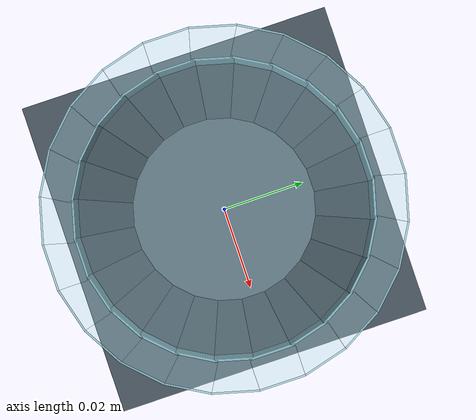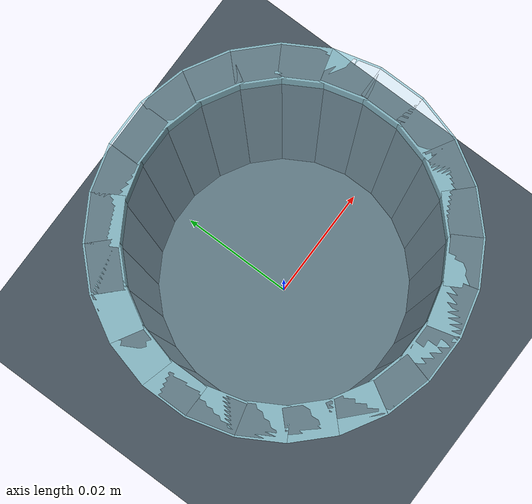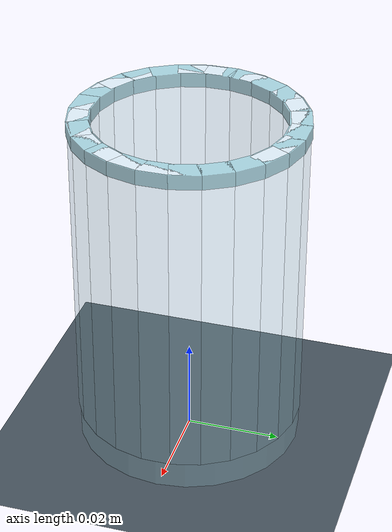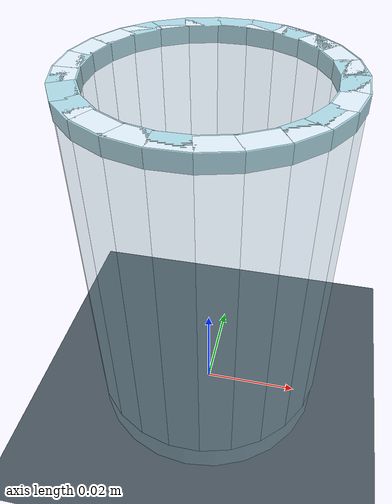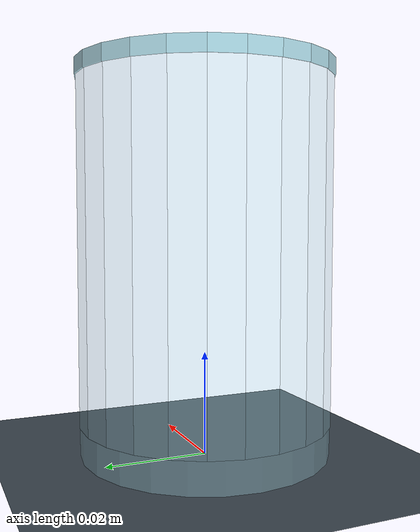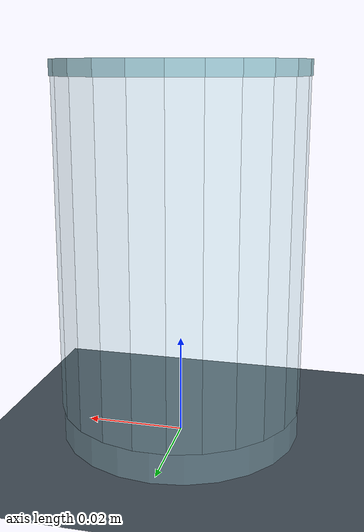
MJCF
<mujoco model="duet2_glass">
  <compiler angle="radian" autolimits="true" />
  <option timestep=".005" integrator="implicitfast" cone="elliptic" iterations="30" />
  <asset>
    <material name="base_motor_holder_so101_v1_material" rgba="1 0.82 0.12 1" />
    <material name="base_so101_v2_material" rgba="1 0.82 0.12 1" />
    <material name="sts3215_03a_v1_material" rgba="0.1 0.1 0.1 1" />
    <material name="waveshare_mounting_plate_so101_v2_material" rgba="1 0.82 0.12 1" />
    <material name="motor_holder_so101_base_v1_material" rgba="1 0.82 0.12 1" />
    <material name="rotation_pitch_so101_v1_material" rgba="1 0.82 0.12 1" />
    <material name="upper_arm_so101_v1_material" rgba="1 0.82 0.12 1" />
    <material name="under_arm_so101_v1_material" rgba="1 0.82 0.12 1" />
    <material name="motor_holder_so101_wrist_v1_material" rgba="1 0.82 0.12 1" />
    <material name="sts3215_03a_no_horn_v1_material" rgba="0.1 0.1 0.1 1.0" />
    <material name="wrist_roll_pitch_so101_v2_material" rgba="1 0.82 0.12 1" />
    <material name="wrist_roll_follower_so101_v1_material" rgba="1 0.82 0.12 1" />
    <material name="moving_jaw_so101_v1_material" rgba="1 0.82 0.12 1" />
    <texture name="sky" type="skybox" builtin="gradient" rgb1="0.15 0.21 0.29" rgb2="0.04 0.07 0.12" width="512" height="3072" />
    <texture name="floor_tex" type="2d" builtin="checker" width="512" height="512" rgb1="0.18 0.22 0.28" rgb2="0.20 0.24 0.30" />
    <material name="floor_mat" texture="floor_tex" texrepeat="8 8" reflectance="0.05" />
    <material name="table_mat" rgba=".69 .53 .37 1" specular="0.25" shininess="0.3" />
    <material name="edge_mat" rgba="0.07 0.12 0.17 1" specular="0.45" />
    <material name="tube_mat" rgba="0.71 0.88 0.94 0.78" specular="0.6" shininess="0.8" />
    <material name="ceramic" rgba=".95 .95 .90 1" specular=".3" shininess=".65" />
    <material name="plate_blue" rgba=".33 .51 .76 1" specular=".35" shininess=".65" />
    <material name="plate_gold" rgba=".81 .56 .28 1" specular=".35" shininess=".65" />
    <material name="mug_teal" rgba=".06 .53 .49 1" specular=".4" shininess=".65" />
    <material name="clear_glass" rgba=".66 .87 .92 .30" specular=".75" shininess=".65" />
    <material name="glass_rim" rgba=".62 .84 .89 .8" specular=".6" shininess=".65" />
    <material name="amber_glass" rgba=".55 .32 .13 .78" specular=".6" shininess=".65" />
    <material name="bottle_label" rgba=".96 .91 .72 1" specular=".1" shininess=".65" />
    <material name="steel" rgba=".72 .78 .83 1" specular=".85" shininess=".65" />
    <material name="drawer_wood" rgba=".37 .21 .12 1" specular=".2" shininess=".65" />
    <material name="drawer_lining" rgba=".20 .28 .27 1" specular=".1" shininess=".65" />
  </asset>
  <worldbody>
    <light pos="0 -.3 2" dir="0 0 -1" />
    <geom name="inspection_floor" type="plane" size=".4 .4 .05" pos="0 0 0.0" rgba=".27 .32 .36 1" />
    <body name="glass" pos="0 0 0.001" euler="0 0 0">
      <freejoint name="glass_free" />
      <inertial pos="0 0 0.037" mass="0.035" diaginertia="2.2691667e-05 2.2691667e-05 1.344e-05" />
      <geom name="glass_base" type="cylinder" size="0.024 0.007" pos="0 0 0.007" mass="0" friction="0.8 0.005 0.0001" condim="4" solref=".012 1" material="clear_glass" />
      <geom name="glass_wall_0" type="box" size="0.002 0.0031596599 0.034" pos="0.022 0 0.04" mass="0" friction="0.8 0.005 0.0001" condim="4" solref=".012 1" euler="0 0 0" material="clear_glass" />
      <geom name="glass_wall_1" type="box" size="0.002 0.0031596599 0.034" pos="0.021250368 0.005694019 0.04" mass="0" friction="0.8 0.005 0.0001" condim="4" solref=".012 1" euler="0 0 0.26179939" material="clear_glass" />
      <geom name="glass_wall_2" type="box" size="0.002 0.0031596599 0.034" pos="0.019052559 0.011 0.04" mass="0" friction="0.8 0.005 0.0001" condim="4" solref=".012 1" euler="0 0 0.52359878" material="clear_glass" />
      <geom name="glass_wall_3" type="box" size="0.002 0.0031596599 0.034" pos="0.015556349 0.015556349 0.04" mass="0" friction="0.8 0.005 0.0001" condim="4" solref=".012 1" euler="0 0 0.78539816" material="clear_glass" />
      <geom name="glass_wall_4" type="box" size="0.002 0.0031596599 0.034" pos="0.011 0.019052559 0.04" mass="0" friction="0.8 0.005 0.0001" condim="4" solref=".012 1" euler="0 0 1.0471976" material="clear_glass" />
      <geom name="glass_wall_5" type="box" size="0.002 0.0031596599 0.034" pos="0.005694019 0.021250368 0.04" mass="0" friction="0.8 0.005 0.0001" condim="4" solref=".012 1" euler="0 0 1.3089969" material="clear_glass" />
      <geom name="glass_wall_6" type="box" size="0.002 0.0031596599 0.034" pos="1.3471115e-18 0.022 0.04" mass="0" friction="0.8 0.005 0.0001" condim="4" solref=".012 1" euler="0 0 1.5707963" material="clear_glass" />
      <geom name="glass_wall_7" type="box" size="0.002 0.0031596599 0.034" pos="-0.005694019 0.021250368 0.04" mass="0" friction="0.8 0.005 0.0001" condim="4" solref=".012 1" euler="0 0 1.8325957" material="clear_glass" />
      <geom name="glass_wall_8" type="box" size="0.002 0.0031596599 0.034" pos="-0.011 0.019052559 0.04" mass="0" friction="0.8 0.005 0.0001" condim="4" solref=".012 1" euler="0 0 2.0943951" material="clear_glass" />
      <geom name="glass_wall_9" type="box" size="0.002 0.0031596599 0.034" pos="-0.015556349 0.015556349 0.04" mass="0" friction="0.8 0.005 0.0001" condim="4" solref=".012 1" euler="0 0 2.3561945" material="clear_glass" />
      <geom name="glass_wall_10" type="box" size="0.002 0.0031596599 0.034" pos="-0.019052559 0.011 0.04" mass="0" friction="0.8 0.005 0.0001" condim="4" solref=".012 1" euler="0 0 2.6179939" material="clear_glass" />
      <geom name="glass_wall_11" type="box" size="0.002 0.0031596599 0.034" pos="-0.021250368 0.005694019 0.04" mass="0" friction="0.8 0.005 0.0001" condim="4" solref=".012 1" euler="0 0 2.8797933" material="clear_glass" />
      <geom name="glass_wall_12" type="box" size="0.002 0.0031596599 0.034" pos="-0.022 2.694223e-18 0.04" mass="0" friction="0.8 0.005 0.0001" condim="4" solref=".012 1" euler="0 0 3.1415927" material="clear_glass" />
      <geom name="glass_wall_13" type="box" size="0.002 0.0031596599 0.034" pos="-0.021250368 -0.005694019 0.04" mass="0" friction="0.8 0.005 0.0001" condim="4" solref=".012 1" euler="0 0 3.403392" material="clear_glass" />
      <geom name="glass_wall_14" type="box" size="0.002 0.0031596599 0.034" pos="-0.019052559 -0.011 0.04" mass="0" friction="0.8 0.005 0.0001" condim="4" solref=".012 1" euler="0 0 3.6651914" material="clear_glass" />
      <geom name="glass_wall_15" type="box" size="0.002 0.0031596599 0.034" pos="-0.015556349 -0.015556349 0.04" mass="0" friction="0.8 0.005 0.0001" condim="4" solref=".012 1" euler="0 0 3.9269908" material="clear_glass" />
      <geom name="glass_wall_16" type="box" size="0.002 0.0031596599 0.034" pos="-0.011 -0.019052559 0.04" mass="0" friction="0.8 0.005 0.0001" condim="4" solref=".012 1" euler="0 0 4.1887902" material="clear_glass" />
      <geom name="glass_wall_17" type="box" size="0.002 0.0031596599 0.034" pos="-0.005694019 -0.021250368 0.04" mass="0" friction="0.8 0.005 0.0001" condim="4" solref=".012 1" euler="0 0 4.4505896" material="clear_glass" />
      <geom name="glass_wall_18" type="box" size="0.002 0.0031596599 0.034" pos="-4.0413344e-18 -0.022 0.04" mass="0" friction="0.8 0.005 0.0001" condim="4" solref=".012 1" euler="0 0 4.712389" material="clear_glass" />
      <geom name="glass_wall_19" type="box" size="0.002 0.0031596599 0.034" pos="0.005694019 -0.021250368 0.04" mass="0" friction="0.8 0.005 0.0001" condim="4" solref=".012 1" euler="0 0 4.9741884" material="clear_glass" />
      <geom name="glass_wall_20" type="box" size="0.002 0.0031596599 0.034" pos="0.011 -0.019052559 0.04" mass="0" friction="0.8 0.005 0.0001" condim="4" solref=".012 1" euler="0 0 5.2359878" material="clear_glass" />
      <geom name="glass_wall_21" type="box" size="0.002 0.0031596599 0.034" pos="0.015556349 -0.015556349 0.04" mass="0" friction="0.8 0.005 0.0001" condim="4" solref=".012 1" euler="0 0 5.4977871" material="clear_glass" />
      <geom name="glass_wall_22" type="box" size="0.002 0.0031596599 0.034" pos="0.019052559 -0.011 0.04" mass="0" friction="0.8 0.005 0.0001" condim="4" solref=".012 1" euler="0 0 5.7595865" material="clear_glass" />
      <geom name="glass_wall_23" type="box" size="0.002 0.0031596599 0.034" pos="0.021250368 -0.005694019 0.04" mass="0" friction="0.8 0.005 0.0001" condim="4" solref=".012 1" euler="0 0 6.0213859" material="clear_glass" />
      <geom name="glass_lip_0" type="box" size="0.00225 0.0031925731 0.0015" pos="0.022 0 0.0725" mass="0" friction="0.8 0.005 0.0001" condim="4" solref=".012 1" euler="0 0 0" material="glass_rim" />
      <geom name="glass_lip_1" type="box" size="0.00225 0.0031925731 0.0015" pos="0.021250368 0.005694019 0.0725" mass="0" friction="0.8 0.005 0.0001" condim="4" solref=".012 1" euler="0 0 0.26179939" material="glass_rim" />
      <geom name="glass_lip_2" type="box" size="0.00225 0.0031925731 0.0015" pos="0.019052559 0.011 0.0725" mass="0" friction="0.8 0.005 0.0001" condim="4" solref=".012 1" euler="0 0 0.52359878" material="glass_rim" />
      <geom name="glass_lip_3" type="box" size="0.00225 0.0031925731 0.0015" pos="0.015556349 0.015556349 0.0725" mass="0" friction="0.8 0.005 0.0001" condim="4" solref=".012 1" euler="0 0 0.78539816" material="glass_rim" />
      <geom name="glass_lip_4" type="box" size="0.00225 0.0031925731 0.0015" pos="0.011 0.019052559 0.0725" mass="0" friction="0.8 0.005 0.0001" condim="4" solref=".012 1" euler="0 0 1.0471976" material="glass_rim" />
      <geom name="glass_lip_5" type="box" size="0.00225 0.0031925731 0.0015" pos="0.005694019 0.021250368 0.0725" mass="0" friction="0.8 0.005 0.0001" condim="4" solref=".012 1" euler="0 0 1.3089969" material="glass_rim" />
      <geom name="glass_lip_6" type="box" size="0.00225 0.0031925731 0.0015" pos="1.3471115e-18 0.022 0.0725" mass="0" friction="0.8 0.005 0.0001" condim="4" solref=".012 1" euler="0 0 1.5707963" material="glass_rim" />
      <geom name="glass_lip_7" type="box" size="0.00225 0.0031925731 0.0015" pos="-0.005694019 0.021250368 0.0725" mass="0" friction="0.8 0.005 0.0001" condim="4" solref=".012 1" euler="0 0 1.8325957" material="glass_rim" />
      <geom name="glass_lip_8" type="box" size="0.00225 0.0031925731 0.0015" pos="-0.011 0.019052559 0.0725" mass="0" friction="0.8 0.005 0.0001" condim="4" solref=".012 1" euler="0 0 2.0943951" material="glass_rim" />
      <geom name="glass_lip_9" type="box" size="0.00225 0.0031925731 0.0015" pos="-0.015556349 0.015556349 0.0725" mass="0" friction="0.8 0.005 0.0001" condim="4" solref=".012 1" euler="0 0 2.3561945" material="glass_rim" />
      <geom name="glass_lip_10" type="box" size="0.00225 0.0031925731 0.0015" pos="-0.019052559 0.011 0.0725" mass="0" friction="0.8 0.005 0.0001" condim="4" solref=".012 1" euler="0 0 2.6179939" material="glass_rim" />
      <geom name="glass_lip_11" type="box" size="0.00225 0.0031925731 0.0015" pos="-0.021250368 0.005694019 0.0725" mass="0" friction="0.8 0.005 0.0001" condim="4" solref=".012 1" euler="0 0 2.8797933" material="glass_rim" />
      <geom name="glass_lip_12" type="box" size="0.00225 0.0031925731 0.0015" pos="-0.022 2.694223e-18 0.0725" mass="0" friction="0.8 0.005 0.0001" condim="4" solref=".012 1" euler="0 0 3.1415927" material="glass_rim" />
      <geom name="glass_lip_13" type="box" size="0.00225 0.0031925731 0.0015" pos="-0.021250368 -0.005694019 0.0725" mass="0" friction="0.8 0.005 0.0001" condim="4" solref=".012 1" euler="0 0 3.403392" material="glass_rim" />
      <geom name="glass_lip_14" type="box" size="0.00225 0.0031925731 0.0015" pos="-0.019052559 -0.011 0.0725" mass="0" friction="0.8 0.005 0.0001" condim="4" solref=".012 1" euler="0 0 3.6651914" material="glass_rim" />
      <geom name="glass_lip_15" type="box" size="0.00225 0.0031925731 0.0015" pos="-0.015556349 -0.015556349 0.0725" mass="0" friction="0.8 0.005 0.0001" condim="4" solref=".012 1" euler="0 0 3.9269908" material="glass_rim" />
      <geom name="glass_lip_16" type="box" size="0.00225 0.0031925731 0.0015" pos="-0.011 -0.019052559 0.0725" mass="0" friction="0.8 0.005 0.0001" condim="4" solref=".012 1" euler="0 0 4.1887902" material="glass_rim" />
      <geom name="glass_lip_17" type="box" size="0.00225 0.0031925731 0.0015" pos="-0.005694019 -0.021250368 0.0725" mass="0" friction="0.8 0.005 0.0001" condim="4" solref=".012 1" euler="0 0 4.4505896" material="glass_rim" />
      <geom name="glass_lip_18" type="box" size="0.00225 0.0031925731 0.0015" pos="-4.0413344e-18 -0.022 0.0725" mass="0" friction="0.8 0.005 0.0001" condim="4" solref=".012 1" euler="0 0 4.712389" material="glass_rim" />
      <geom name="glass_lip_19" type="box" size="0.00225 0.0031925731 0.0015" pos="0.005694019 -0.021250368 0.0725" mass="0" friction="0.8 0.005 0.0001" condim="4" solref=".012 1" euler="0 0 4.9741884" material="glass_rim" />
      <geom name="glass_lip_20" type="box" size="0.00225 0.0031925731 0.0015" pos="0.011 -0.019052559 0.0725" mass="0" friction="0.8 0.005 0.0001" condim="4" solref=".012 1" euler="0 0 5.2359878" material="glass_rim" />
      <geom name="glass_lip_21" type="box" size="0.00225 0.0031925731 0.0015" pos="0.015556349 -0.015556349 0.0725" mass="0" friction="0.8 0.005 0.0001" condim="4" solref=".012 1" euler="0 0 5.4977871" material="glass_rim" />
      <geom name="glass_lip_22" type="box" size="0.00225 0.0031925731 0.0015" pos="0.019052559 -0.011 0.0725" mass="0" friction="0.8 0.005 0.0001" condim="4" solref=".012 1" euler="0 0 5.7595865" material="glass_rim" />
      <geom name="glass_lip_23" type="box" size="0.00225 0.0031925731 0.0015" pos="0.021250368 -0.005694019 0.0725" mass="0" friction="0.8 0.005 0.0001" condim="4" solref=".012 1" euler="0 0 6.0213859" material="glass_rim" />
      <site name="glass_grasp" pos="0 0 0.045" size=".002" group="4" rgba="0 1 0 1" />
    </body>
  </worldbody>
</mujoco>
